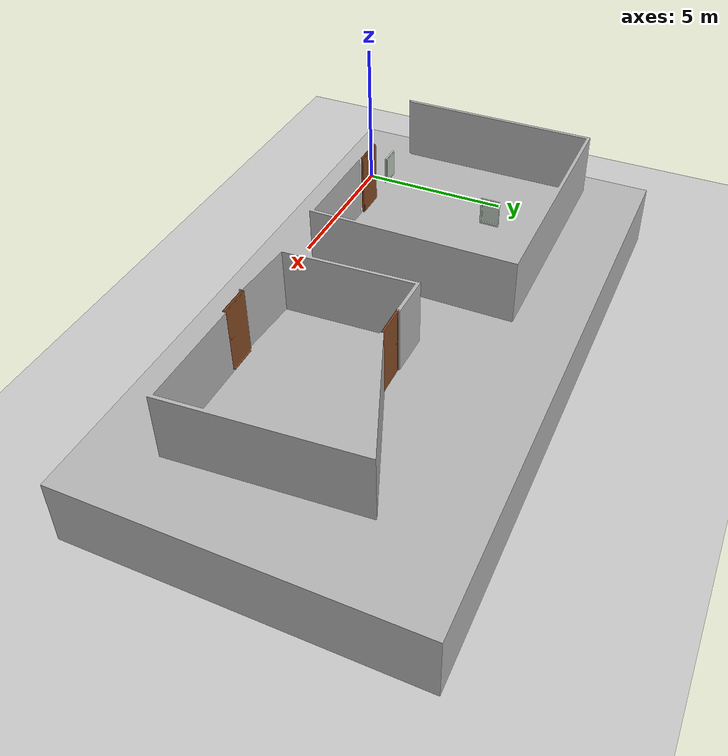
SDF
<?xml version="1.0" ?>
<sdf version="1.6">
    <world name="escenarioconVentana">
        <include>
            <uri>model://ground_plane</uri>
        </include>
        <include>
            <uri>model://sun</uri>
        </include>
        <include>
            <uri>model://escenarioconVentana</uri>
            <pose>0 0 0 0 0 0</pose>
        </include>
    </world>
</sdf>

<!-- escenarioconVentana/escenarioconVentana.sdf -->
<sdf version="1.6">
    <model name="escenarioconVentana">
        <static>false</static>
        <link name="pared_link">
            <pose>0 0 0 0 0 0</pose>
            <gravity>false</gravity>
            <self_collide>false</self_collide>
            <visual name="pared_visual">
                <geometry>
                    <mesh>
                        <uri>model://escenarioconVentana/meshes/walls_slabs.dae</uri>
                    </mesh>
                </geometry>
            </visual>
            <collision name="pared_collision">
                <geometry>
                    <mesh>
                        <uri>model://escenarioconVentana/meshes/walls_slabs.dae</uri>
                    </mesh>
                </geometry>
            </collision>
            <inertial>
                <mass>1728000.6910</mass>
                <inertia>
                    <ixx>16704012.2418</ixx>
                    <iyy>48960038.8737</iyy>
                    <izz>61056049.2727</izz>
                    <ixy>0.0</ixy>
                    <ixz>0.0</ixz>
                    <iyz>0.0</iyz>
                </inertia>
            </inertial>
        </link>
        <link name="puerta1_link">
            <pose>3.99999976158142 2.02034997940063 1.97499990463257 0 0 0</pose>
            <visual name="puerta1_visual">
                <geometry>
                    <mesh>
                        <uri>model://escenarioconVentana/meshes/0S0NG4owH0uBivEhLsmS3F.dae</uri>
                    </mesh>
                </geometry>
            </visual>
            <collision name="puerta1_collision">
                <geometry>
                    <mesh>
                        <uri>model://escenarioconVentana/meshes/0S0NG4owH0uBivEhLsmS3F.dae</uri>
                    </mesh>
                </geometry>
            </collision>
            <inertial>
                <mass>132.7387</mass>
                <inertia>
                    <ixx>45.5056</ixx>
                    <iyy>55.3424</iyy>
                    <izz>10.1293</izz>
                    <ixy>0.0</ixy>
                    <ixz>0.0</ixz>
                    <iyz>0.0</iyz>
                </inertia>
            </inertial>
        </link>
        <joint name="rev_joint_puerta1" type="revolute">
            <parent>pared_link</parent>
            <child>puerta1_link</child>
            <pose>0 0 0 0 0 0</pose>
            <axis>
                <xyz>0 0 1</xyz>
                <limit>
                    <lower>-1.57</lower>
                    <upper>1.57</upper>
                    <effort>10</effort>
                    <velocity>1.0</velocity>
                </limit>
                <dynamics>
                    <damping>1.0129</damping>
                    <friction>0.5065</friction>
                </dynamics>
            </axis>
        </joint>
        <link name="ventana1_link">
            <pose>2.44999980926514 1.90535044670105 2.00000023841858 0 0 0</pose>
            <visual name="ventana1_visual">
                <geometry>
                    <mesh>
                        <uri>model://escenarioconVentana/meshes/06VSAmXC90pgMnrNrthNVu.dae</uri>
                    </mesh>
                </geometry>
            </visual>
            <collision name="ventana1_collision">
                <geometry>
                    <mesh>
                        <uri>model://escenarioconVentana/meshes/06VSAmXC90pgMnrNrthNVu.dae</uri>
                    </mesh>
                </geometry>
            </collision>
            <inertial>
                <mass>81.0000</mass>
                <inertia>
                    <ixx>5.5055</ixx>
                    <iyy>7.8975</iyy>
                    <izz>2.4680</izz>
                    <ixy>0.0</ixy>
                    <ixz>0.0</ixz>
                    <iyz>0.0</iyz>
                </inertia>
            </inertial>
        </link>
        <joint name="prism_joint_ventana1" type="prismatic">
            <parent>pared_link</parent>
            <child>ventana1_link</child>
            <pose>0 0 0 0 0 0</pose>
            <axis>
                <xyz>1 0 0</xyz>
                <limit>
                    <lower>0.0</lower>
                    <upper>1.0</upper>
                    <effort>10</effort>
                    <velocity>0.5</velocity>
                </limit>
                <dynamics>
                    <damping>8.1000</damping>
                    <friction>1.6200</friction>
                </dynamics>
            </axis>
        </joint>
        <link name="puerta2_link">
            <pose>12.0 2.02034997940063 2.0 0 0 0</pose>
            <visual name="puerta2_visual">
                <geometry>
                    <mesh>
                        <uri>model://escenarioconVentana/meshes/0ESY8acebCD9KC_SRxdRoR.dae</uri>
                    </mesh>
                </geometry>
            </visual>
            <collision name="puerta2_collision">
                <geometry>
                    <mesh>
                        <uri>model://escenarioconVentana/meshes/0ESY8acebCD9KC_SRxdRoR.dae</uri>
                    </mesh>
                </geometry>
            </collision>
            <inertial>
                <mass>132.7387</mass>
                <inertia>
                    <ixx>45.5056</ixx>
                    <iyy>55.3424</iyy>
                    <izz>10.1293</izz>
                    <ixy>0.0</ixy>
                    <ixz>0.0</ixz>
                    <iyz>0.0</iyz>
                </inertia>
            </inertial>
        </link>
        <joint name="rev_joint_puerta2" type="revolute">
            <parent>pared_link</parent>
            <child>puerta2_link</child>
            <pose>0 0 0 0 0 0</pose>
            <axis>
                <xyz>0 0 1</xyz>
                <limit>
                    <lower>-1.57</lower>
                    <upper>1.57</upper>
                    <effort>10</effort>
                    <velocity>1.0</velocity>
                </limit>
                <dynamics>
                    <damping>1.0129</damping>
                    <friction>0.5065</friction>
                </dynamics>
            </axis>
        </joint>
        <link name="puerta3_link">
            <pose>12.0 6.0 2.0 0 0 0</pose>
            <visual name="puerta3_visual">
                <geometry>
                    <mesh>
                        <uri>model://escenarioconVentana/meshes/3xuUtrQBT7shhrA3mjVmkT.dae</uri>
                    </mesh>
                </geometry>
            </visual>
            <collision name="puerta3_collision">
                <geometry>
                    <mesh>
                        <uri>model://escenarioconVentana/meshes/3xuUtrQBT7shhrA3mjVmkT.dae</uri>
                    </mesh>
                </geometry>
            </collision>
            <inertial>
                <mass>132.7388</mass>
                <inertia>
                    <ixx>45.5056</ixx>
                    <iyy>55.3424</iyy>
                    <izz>10.1294</izz>
                    <ixy>0.0</ixy>
                    <ixz>0.0</ixz>
                    <iyz>0.0</iyz>
                </inertia>
            </inertial>
        </link>
        <joint name="rev_joint_puerta3" type="revolute">
            <parent>pared_link</parent>
            <child>puerta3_link</child>
            <pose>0 0 0 0 0 0</pose>
            <axis>
                <xyz>0 0 1</xyz>
                <limit>
                    <lower>-1.57</lower>
                    <upper>1.57</upper>
                    <effort>10</effort>
                    <velocity>1.0</velocity>
                </limit>
                <dynamics>
                    <damping>1.0129</damping>
                    <friction>0.5065</friction>
                </dynamics>
            </axis>
        </joint>
        <link name="ventana2_link">
            <pose>4.32913398742676 5.72221183776855 2.22260975837708 0 0 0</pose>
            <visual name="ventana2_visual">
                <geometry>
                    <mesh>
                        <uri>model://escenarioconVentana/meshes/3MdxIa0Db04wmuhqC_D3Bl.dae</uri>
                    </mesh>
                </geometry>
            </visual>
            <collision name="ventana2_collision">
                <geometry>
                    <mesh>
                        <uri>model://escenarioconVentana/meshes/3MdxIa0Db04wmuhqC_D3Bl.dae</uri>
                    </mesh>
                </geometry>
            </collision>
            <inertial>
                <mass>81.0000</mass>
                <inertia>
                    <ixx>7.8975</ixx>
                    <iyy>5.5055</iyy>
                    <izz>2.4680</izz>
                    <ixy>0.0</ixy>
                    <ixz>0.0</ixz>
                    <iyz>0.0</iyz>
                </inertia>
            </inertial>
        </link>
        <joint name="prism_joint_ventana2" type="prismatic">
            <parent>pared_link</parent>
            <child>ventana2_link</child>
            <pose>0 0 0 0 0 0</pose>
            <axis>
                <xyz>0 1 0</xyz>
                <limit>
                    <lower>0.0</lower>
                    <upper>1.0</upper>
                    <effort>10</effort>
                    <velocity>0.5</velocity>
                </limit>
                <dynamics>
                    <damping>8.1000</damping>
                    <friction>1.6200</friction>
                </dynamics>
            </axis>
        </joint>
    </model>
</sdf>
